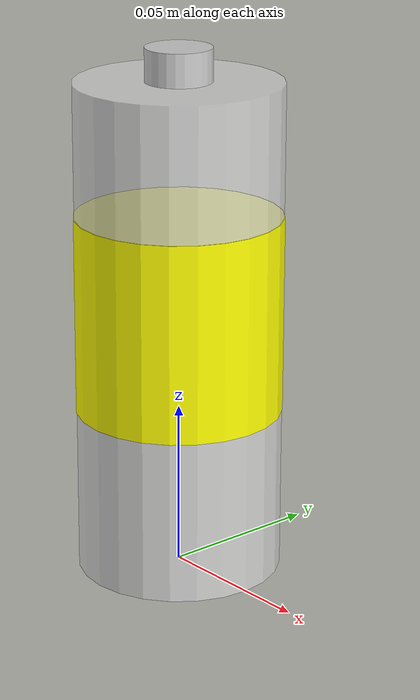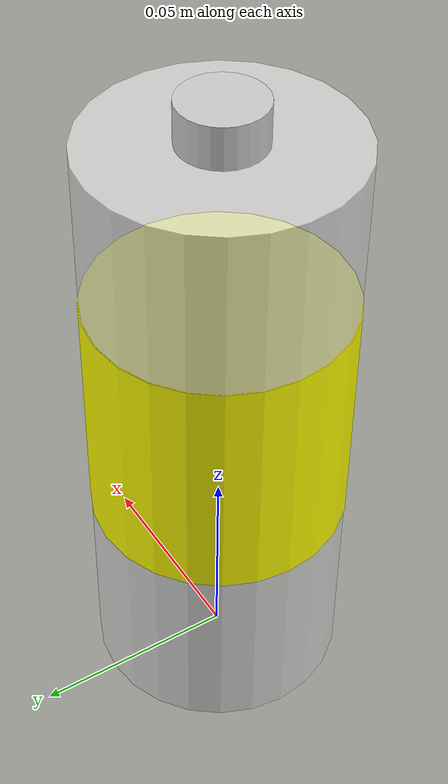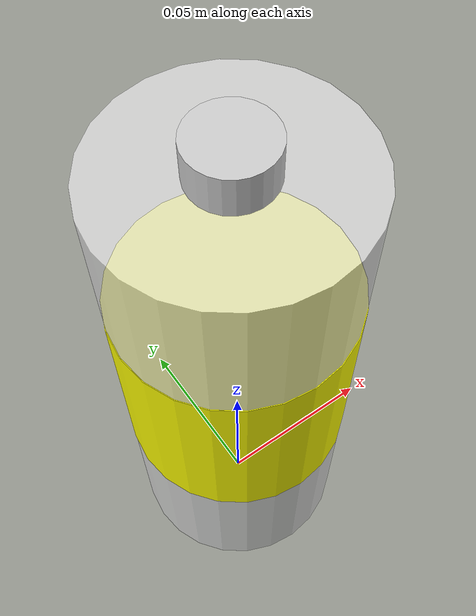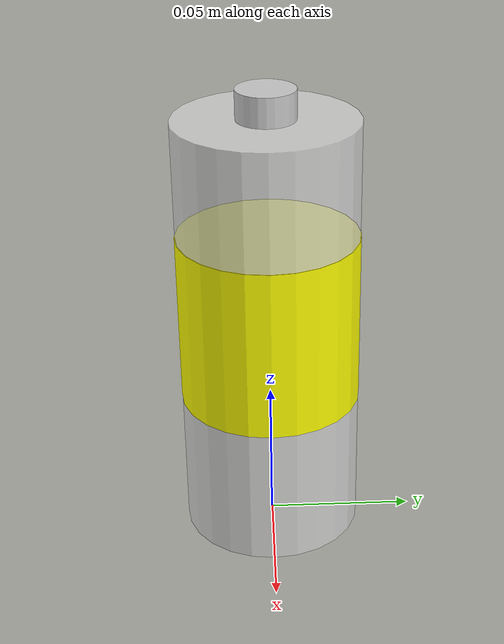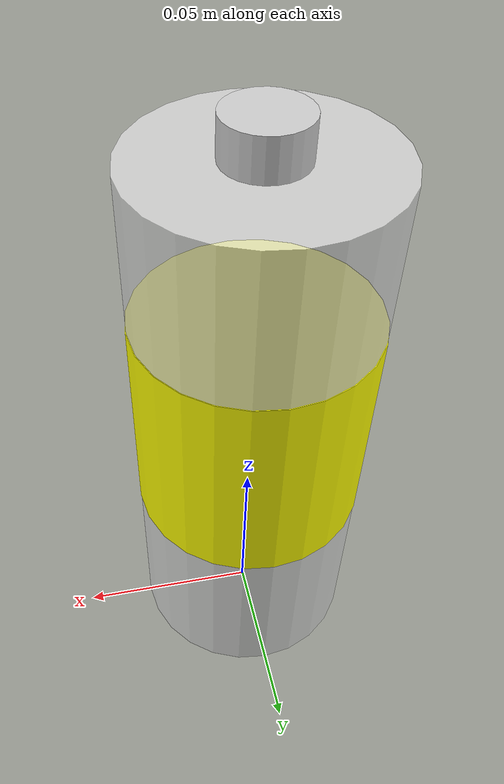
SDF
<?xml version="1.0" ?>
<sdf version='1.6'>
  <model name='plastic_bottle'>
    <static>false</static>
    <link name="bottle_link">
      <inertial>
        <mass>0.35</mass>
        <inertia>
          <ixx>0.0008</ixx>
          <ixy>0</ixy>
          <ixz>0</ixz>
          <iyy>0.0008</iyy>
          <iyz>0</iyz>
          <izz>0.0001</izz>
        </inertia>
      </inertial>

      <!-- Bottle body (main cylinder) -->
      <collision name="bottle_body_collision">
        <pose>0 0 0.075 0 0 0</pose>
        <geometry>
          <cylinder>
            <radius>0.031</radius>
            <length>0.15</length>
          </cylinder>
        </geometry>
        <surface>
          <friction>
            <ode>
              <mu>0.8</mu>
              <mu2>0.8</mu2>
            </ode>
          </friction>
        </surface>
      </collision>

      <visual name="bottle_body_visual">
        <pose>0 0 0.075 0 0 0</pose>
        <geometry>
          <cylinder>
            <radius>0.031</radius>
            <length>0.15</length>
          </cylinder>
        </geometry>
        <material>
          <script>
            <uri>model://plastic_bottle/materials/scripts</uri>
            <name>bottle_material</name>
          </script>
          <ambient>0.9 0.9 0.9 0.8</ambient>
          <diffuse>0.9 0.9 0.9 0.8</diffuse>
          <specular>1.0 1.0 1.0 0.8</specular>
        </material>
      </visual>

      <!-- Water inside bottle -->
      <visual name="water_visual">
        <pose>0 0 0.06 0 0 0</pose>
        <geometry>
          <cylinder>
            <radius>0.029</radius>
            <length>0.12</length>
          </cylinder>
        </geometry>
        <material>
          <script>
            <uri>model://plastic_bottle/materials/scripts</uri>
            <name>water_material</name>
          </script>
          <ambient>0.7 0.9 1.0 0.3</ambient>
          <diffuse>0.7 0.9 1.0 0.3</diffuse>
          <specular>1.0 1.0 1.0 0.3</specular>
        </material>
      </visual>

      <!-- Yellow label -->
      <visual name="label_visual">
        <pose>0 0 0.08 0 0 0</pose>
        <geometry>
          <cylinder>
            <radius>0.0312</radius>
            <length>0.06</length>
          </cylinder>
        </geometry>
        <material>
          <script>
            <uri>model://plastic_bottle/materials/scripts</uri>
            <name>label_material</name>
          </script>
          <ambient>1.0 1.0 0.0 1.0</ambient>
          <diffuse>1.0 1.0 0.0 1.0</diffuse>
          <specular>0.2 0.2 0.0 1.0</specular>
        </material>
      </visual>

      <!-- Bottle cap -->
      <collision name="bottle_cap_collision">
        <pose>0 0 0.155 0 0 0</pose>
        <geometry>
          <cylinder>
            <radius>0.01</radius>
            <length>0.01</length>
          </cylinder>
        </geometry>
      </collision>

      <visual name="bottle_cap_visual">
        <pose>0 0 0.155 0 0 0</pose>
        <geometry>
          <cylinder>
            <radius>0.01</radius>
            <length>0.01</length>
          </cylinder>
        </geometry>
        <material>
          <ambient>0.8 0.8 0.8 1.0</ambient>
          <diffuse>0.8 0.8 0.8 1.0</diffuse>
          <specular>0.5 0.5 0.5 1.0</specular>
        </material>
      </visual>
    </link>
  </model>
</sdf>
